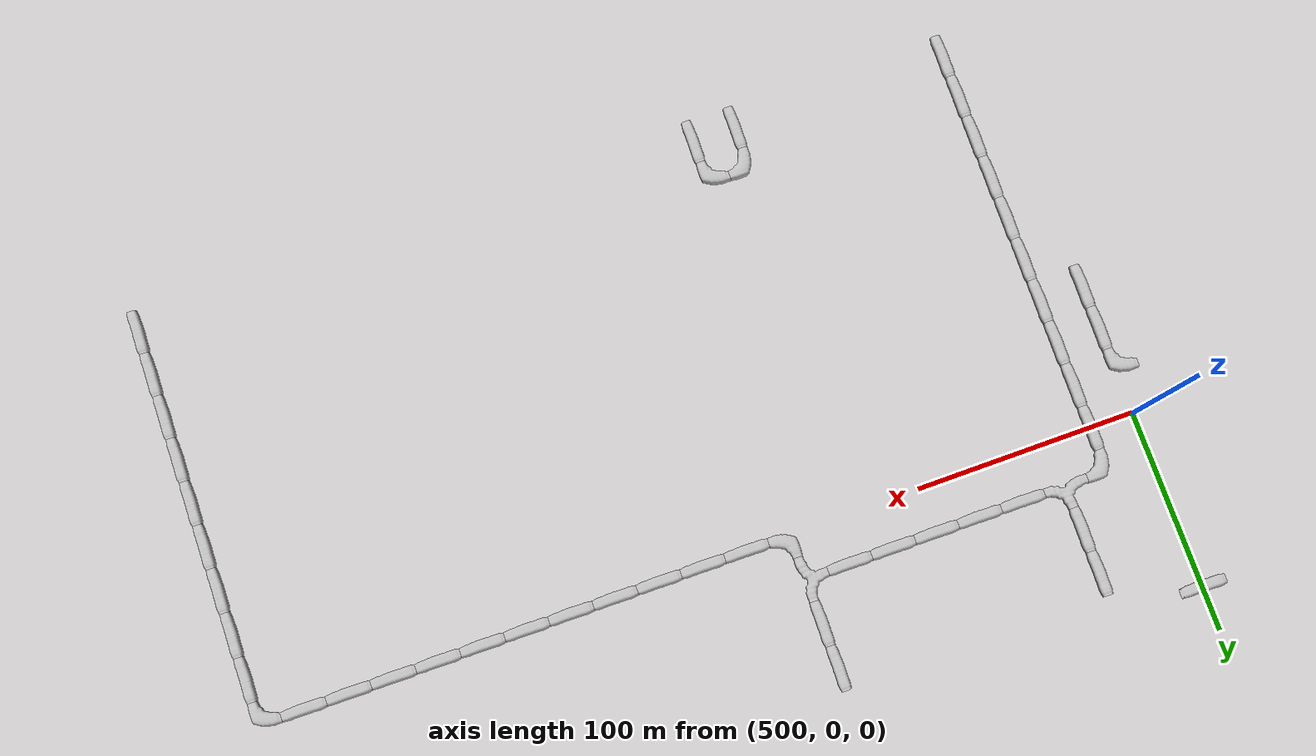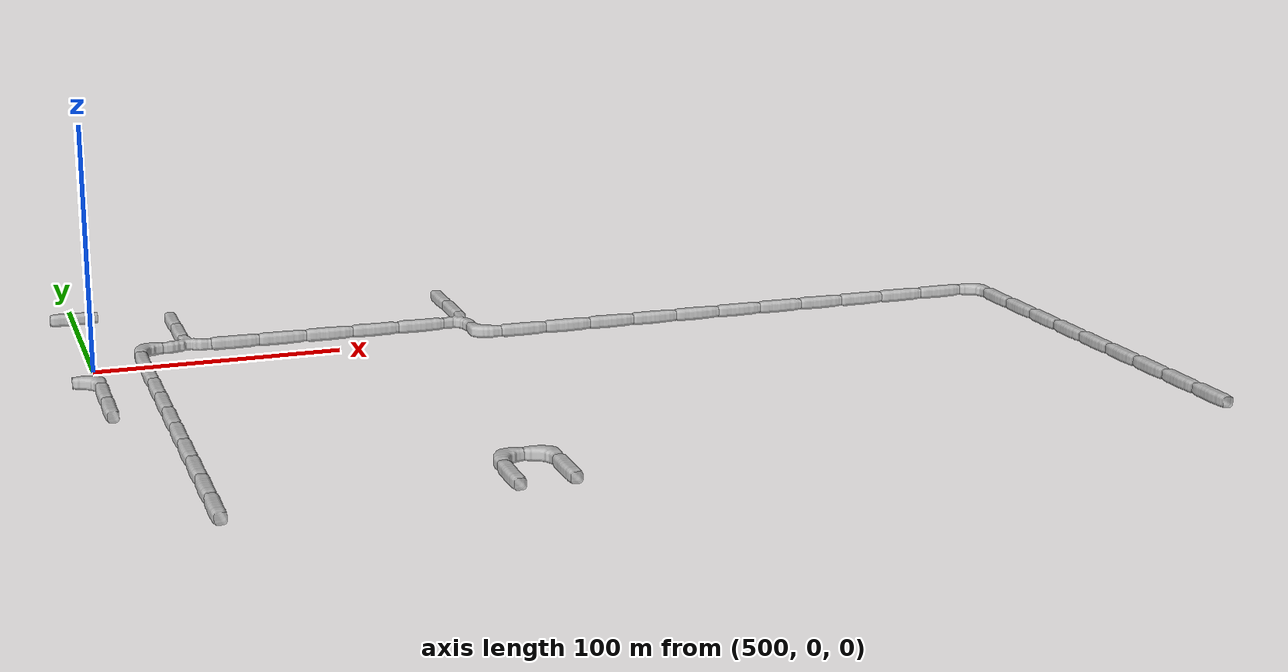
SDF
<sdf version="1.6">
 <world name="cave_16000_4">
  <include>
   <static>true</static>
   <name>cave_25_4</name>
   <pose>500 80 0 0 0 1.5707963267948966</pose>
   <uri>model://cave_straight_20m</uri>
  </include>
  <include>
   <static>true</static>
   <name>cave_27_3</name>
   <pose>540 60 0 0 0 0.0</pose>
   <uri>model://cave_straight_20m</uri>
  </include>
  <include>
   <static>true</static>
   <name>cave_27_2</name>
   <pose>540 40 0 0 0 0.0</pose>
   <uri>model://cave_straight_20m</uri>
  </include>
  <include>
   <static>true</static>
   <name>cave_27_1</name>
   <pose>540 20 0 0 0 0.0</pose>
   <uri>model://cave_3way_20m</uri>
  </include>
  <include>
   <static>true</static>
   <name>cave_28_1</name>
   <pose>560 20 0 0 0 1.5707963267948966</pose>
   <uri>model://cave_straight_20m</uri>
  </include>
  <include>
   <static>true</static>
   <name>cave_29_1</name>
   <pose>580 20 0 0 0 1.5707963267948966</pose>
   <uri>model://cave_straight_20m</uri>
  </include>
  <include>
   <static>true</static>
   <name>cave_30_1</name>
   <pose>600 20 0 0 0 1.5707963267948966</pose>
   <uri>model://cave_straight_20m</uri>
  </include>
  <include>
   <static>true</static>
   <name>cave_31_1</name>
   <pose>620 20 0 0 0 1.5707963267948966</pose>
   <uri>model://cave_straight_20m</uri>
  </include>
  <include>
   <static>true</static>
   <name>cave_32_1</name>
   <pose>640 20 0 0 0 1.5707963267948966</pose>
   <uri>model://cave_straight_20m</uri>
  </include>
  <include>
   <static>true</static>
   <name>cave_33_1</name>
   <pose>660 20 0 0 0 1.5707963267948966</pose>
   <uri>model://cave_3way_20m</uri>
  </include>
  <include>
   <static>true</static>
   <name>cave_33_0</name>
   <pose>660 0 0 0 0 0.0</pose>
   <uri>model://cave_L_20m</uri>
  </include>
  <include>
   <static>true</static>
   <name>cave_34_0</name>
   <pose>680 0 0 0 0 1.5707963267948966</pose>
   <uri>model://cave_straight_20m</uri>
  </include>
  <include>
   <static>true</static>
   <name>cave_35_0</name>
   <pose>700 0 0 0 0 1.5707963267948966</pose>
   <uri>model://cave_straight_20m</uri>
  </include>
  <include>
   <static>true</static>
   <name>cave_36_0</name>
   <pose>720 0 0 0 0 1.5707963267948966</pose>
   <uri>model://cave_straight_20m</uri>
  </include>
  <include>
   <static>true</static>
   <name>cave_37_0</name>
   <pose>740 0 0 0 0 1.5707963267948966</pose>
   <uri>model://cave_straight_20m</uri>
  </include>
  <include>
   <static>true</static>
   <name>cave_38_0</name>
   <pose>760 0 0 0 0 1.5707963267948966</pose>
   <uri>model://cave_straight_20m</uri>
  </include>
  <include>
   <static>true</static>
   <name>cave_39_0</name>
   <pose>780 0 0 0 0 1.5707963267948966</pose>
   <uri>model://cave_straight_20m</uri>
  </include>
  <include>
   <static>true</static>
   <name>cave_40_0</name>
   <pose>800 0 0 0 0 1.5707963267948966</pose>
   <uri>model://cave_straight_20m</uri>
  </include>
  <include>
   <static>true</static>
   <name>cave_41_0</name>
   <pose>820 0 0 0 0 1.5707963267948966</pose>
   <uri>model://cave_straight_20m</uri>
  </include>
  <include>
   <static>true</static>
   <name>cave_42_0</name>
   <pose>840 0 0 0 0 1.5707963267948966</pose>
   <uri>model://cave_straight_20m</uri>
  </include>
  <include>
   <static>true</static>
   <name>cave_43_0</name>
   <pose>860 0 0 0 0 1.5707963267948966</pose>
   <uri>model://cave_straight_20m</uri>
  </include>
  <include>
   <static>true</static>
   <name>cave_44_0</name>
   <pose>880 0 0 0 0 1.5707963267948966</pose>
   <uri>model://cave_straight_20m</uri>
  </include>
  <include>
   <static>true</static>
   <name>cave_45_0</name>
   <pose>900 0 0 0 0 3.141592653589793</pose>
   <uri>model://cave_L_20m</uri>
  </include>
  <include>
   <static>true</static>
   <name>cave_45_-1</name>
   <pose>900 -20 0 0 0 0.0</pose>
   <uri>model://cave_straight_20m</uri>
  </include>
  <include>
   <static>true</static>
   <name>cave_45_-2</name>
   <pose>900 -40 0 0 0 0.0</pose>
   <uri>model://cave_straight_20m</uri>
  </include>
  <include>
   <static>true</static>
   <name>cave_45_-3</name>
   <pose>900 -60 0 0 0 0.0</pose>
   <uri>model://cave_straight_20m</uri>
  </include>
  <include>
   <static>true</static>
   <name>cave_45_-4</name>
   <pose>900 -80 0 0 0 0.0</pose>
   <uri>model://cave_straight_20m</uri>
  </include>
  <include>
   <static>true</static>
   <name>cave_45_-5</name>
   <pose>900 -100 0 0 0 0.0</pose>
   <uri>model://cave_straight_20m</uri>
  </include>
  <include>
   <static>true</static>
   <name>cave_45_-6</name>
   <pose>900 -120 0 0 0 0.0</pose>
   <uri>model://cave_straight_20m</uri>
  </include>
  <include>
   <static>true</static>
   <name>cave_45_-7</name>
   <pose>900 -140 0 0 0 0.0</pose>
   <uri>model://cave_straight_20m</uri>
  </include>
  <include>
   <static>true</static>
   <name>cave_45_-8</name>
   <pose>900 -160 0 0 0 0.0</pose>
   <uri>model://cave_straight_20m</uri>
  </include>
  <include>
   <static>true</static>
   <name>cave_45_-9</name>
   <pose>900 -180 0 0 0 0.0</pose>
   <uri>model://cave_straight_20m</uri>
  </include>
  <include>
   <static>true</static>
   <name>cave_31_-9</name>
   <pose>620 -180 0 0 0 0.0</pose>
   <uri>model://cave_straight_20m</uri>
  </include>
  <include>
   <static>true</static>
   <name>cave_31_-8</name>
   <pose>620 -160 0 0 0 -1.5707963267948966</pose>
   <uri>model://cave_L_20m</uri>
  </include>
  <include>
   <static>true</static>
   <name>cave_32_-8</name>
   <pose>640 -160 0 0 0 3.141592653589793</pose>
   <uri>model://cave_L_20m</uri>
  </include>
  <include>
   <static>true</static>
   <name>cave_32_-9</name>
   <pose>640 -180 0 0 0 0.0</pose>
   <uri>model://cave_straight_20m</uri>
  </include>
  <include>
   <static>true</static>
   <name>cave_33_2</name>
   <pose>660 40 0 0 0 0.0</pose>
   <uri>model://cave_straight_20m</uri>
  </include>
  <include>
   <static>true</static>
   <name>cave_33_3</name>
   <pose>660 60 0 0 0 0.0</pose>
   <uri>model://cave_straight_20m</uri>
  </include>
  <include>
   <static>true</static>
   <name>cave_26_1</name>
   <pose>520 20 0 0 0 -1.5707963267948966</pose>
   <uri>model://cave_L_20m</uri>
  </include>
  <include>
   <static>true</static>
   <name>cave_26_0</name>
   <pose>520 0 0 0 0 0.0</pose>
   <uri>model://cave_straight_20m</uri>
  </include>
  <include>
   <static>true</static>
   <name>cave_26_-1</name>
   <pose>520 -20 0 0 0 0.0</pose>
   <uri>model://cave_straight_20m</uri>
  </include>
  <include>
   <static>true</static>
   <name>cave_26_-2</name>
   <pose>520 -40 0 0 0 0.0</pose>
   <uri>model://cave_straight_20m</uri>
  </include>
  <include>
   <static>true</static>
   <name>cave_26_-3</name>
   <pose>520 -60 0 0 0 0.0</pose>
   <uri>model://cave_straight_20m</uri>
  </include>
  <include>
   <static>true</static>
   <name>cave_26_-4</name>
   <pose>520 -80 0 0 0 0.0</pose>
   <uri>model://cave_straight_20m</uri>
  </include>
  <include>
   <static>true</static>
   <name>cave_26_-5</name>
   <pose>520 -100 0 0 0 0.0</pose>
   <uri>model://cave_straight_20m</uri>
  </include>
  <include>
   <static>true</static>
   <name>cave_26_-6</name>
   <pose>520 -120 0 0 0 0.0</pose>
   <uri>model://cave_straight_20m</uri>
  </include>
  <include>
   <static>true</static>
   <name>cave_26_-7</name>
   <pose>520 -140 0 0 0 0.0</pose>
   <uri>model://cave_straight_20m</uri>
  </include>
  <include>
   <static>true</static>
   <name>cave_26_-8</name>
   <pose>520 -160 0 0 0 0.0</pose>
   <uri>model://cave_straight_20m</uri>
  </include>
  <include>
   <static>true</static>
   <name>cave_26_-9</name>
   <pose>520 -180 0 0 0 0.0</pose>
   <uri>model://cave_straight_20m</uri>
  </include>
  <include>
   <static>true</static>
   <name>cave_25_-3</name>
   <pose>500 -60 0 0 0 0.0</pose>
   <uri>model://cave_straight_20m</uri>
  </include>
  <include>
   <static>true</static>
   <name>cave_25_-2</name>
   <pose>500 -40 0 0 0 0.0</pose>
   <uri>model://cave_straight_20m</uri>
  </include>
  <include>
   <static>true</static>
   <name>cave_25_-1</name>
   <pose>500 -20 0 0 0 3.141592653589793</pose>
   <uri>model://cave_L_20m</uri>
  </include>
 </world>
</sdf>
